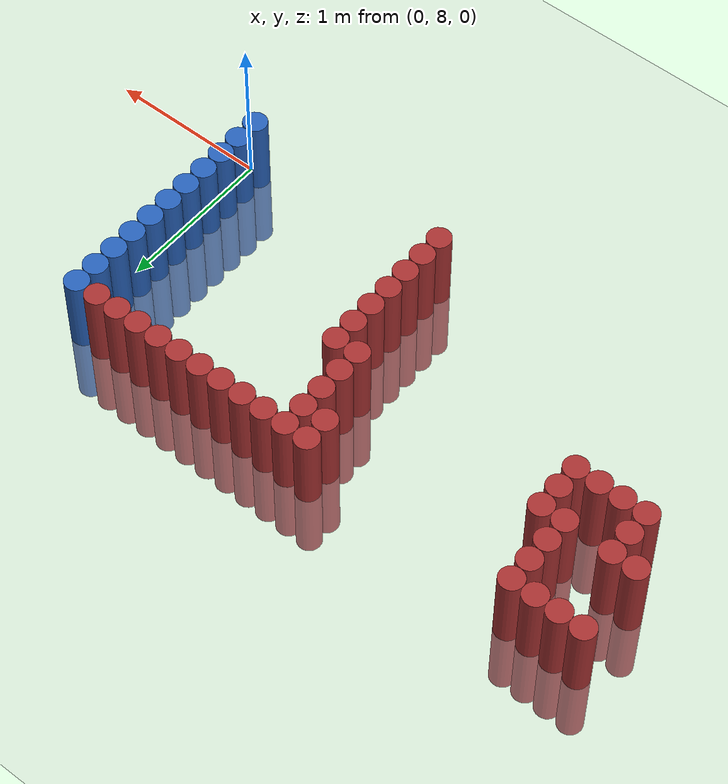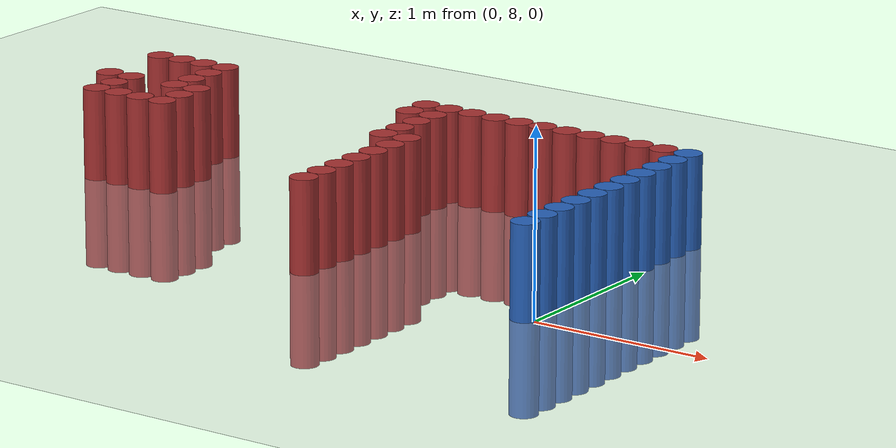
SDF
<sdf version="1.6">
 <world name="default">
  <model name="ground_plane">
   <static>1</static>
   <link name="link">
    <collision name="collision">
     <geometry><plane><normal>0 0 1</normal><size>100 100</size></plane></geometry>
     <surface><friction><ode><mu>100</mu><mu2>50</mu2></ode></friction></surface>
    </collision>
    <visual name="visual">
     <cast_shadows>0</cast_shadows>
     <geometry><plane><normal>0 0 1</normal><size>100 100</size></plane></geometry>
     <material>
      <script><uri>file://media/materials/scripts/gazebo.material</uri><name>Gazebo/Grey</name></script>
     </material>
    </visual>
   </link>
  </model>
  <model name="unit_cylinder_169">
   <static>1</static>
   <pose>-3.525000 9.075000 0.000000 0.000000 0.000000 0.000000</pose>
   <link name="link">
    <inertial>
     <mass>1</mass>
     <inertia><ixx>0.145833</ixx><ixy>0</ixy><ixz>0</ixz><iyy>0.145833</iyy><iyz>0</iyz><izz>0.125</izz></inertia>
    </inertial>
    <collision name="collision">
     <geometry><cylinder><radius>0.075000</radius><length>1</length></cylinder></geometry>
    </collision>
    <visual name="visual">
     <geometry><cylinder><radius>0.075000</radius><length>1</length></cylinder></geometry>
     <material>
      <ambient>0.648000 0.192000 0.192000 1</ambient>
      <diffuse>0.648000 0.192000 0.192000 1</diffuse>
     </material>
     <material>
      <script><name>Gazebo/Grey</name><uri>file://media/materials/scripts/gazebo.material</uri></script>
     </material>
    </visual>
   </link>
  </model>
  <model name="unit_cylinder_170">
   <static>1</static>
   <pose>-3.525000 9.525000 0.000000 0.000000 0.000000 0.000000</pose>
   <link name="link">
    <inertial>
     <mass>1</mass>
     <inertia><ixx>0.145833</ixx><ixy>0</ixy><ixz>0</ixz><iyy>0.145833</iyy><iyz>0</iyz><izz>0.125</izz></inertia>
    </inertial>
    <collision name="collision">
     <geometry><cylinder><radius>0.075000</radius><length>1</length></cylinder></geometry>
    </collision>
    <visual name="visual">
     <geometry><cylinder><radius>0.075000</radius><length>1</length></cylinder></geometry>
     <material>
      <ambient>0.648000 0.192000 0.192000 1</ambient>
      <diffuse>0.648000 0.192000 0.192000 1</diffuse>
     </material>
     <material>
      <script><name>Gazebo/Grey</name><uri>file://media/materials/scripts/gazebo.material</uri></script>
     </material>
    </visual>
   </link>
  </model>
  <model name="unit_cylinder_173">
   <static>1</static>
   <pose>-3.375000 8.775000 0.000000 0.000000 0.000000 0.000000</pose>
   <link name="link">
    <inertial>
     <mass>1</mass>
     <inertia><ixx>0.145833</ixx><ixy>0</ixy><ixz>0</ixz><iyy>0.145833</iyy><iyz>0</iyz><izz>0.125</izz></inertia>
    </inertial>
    <collision name="collision">
     <geometry><cylinder><radius>0.075000</radius><length>1</length></cylinder></geometry>
    </collision>
    <visual name="visual">
     <geometry><cylinder><radius>0.075000</radius><length>1</length></cylinder></geometry>
     <material>
      <ambient>0.648000 0.192000 0.192000 1</ambient>
      <diffuse>0.648000 0.192000 0.192000 1</diffuse>
     </material>
     <material>
      <script><name>Gazebo/Grey</name><uri>file://media/materials/scripts/gazebo.material</uri></script>
     </material>
    </visual>
   </link>
  </model>
  <model name="unit_cylinder_174">
   <static>1</static>
   <pose>-3.375000 8.925000 0.000000 0.000000 0.000000 0.000000</pose>
   <link name="link">
    <inertial>
     <mass>1</mass>
     <inertia><ixx>0.145833</ixx><ixy>0</ixy><ixz>0</ixz><iyy>0.145833</iyy><iyz>0</iyz><izz>0.125</izz></inertia>
    </inertial>
    <collision name="collision">
     <geometry><cylinder><radius>0.075000</radius><length>1</length></cylinder></geometry>
    </collision>
    <visual name="visual">
     <geometry><cylinder><radius>0.075000</radius><length>1</length></cylinder></geometry>
     <material>
      <ambient>0.648000 0.192000 0.192000 1</ambient>
      <diffuse>0.648000 0.192000 0.192000 1</diffuse>
     </material>
     <material>
      <script><name>Gazebo/Grey</name><uri>file://media/materials/scripts/gazebo.material</uri></script>
     </material>
    </visual>
   </link>
  </model>
  <model name="unit_cylinder_175">
   <static>1</static>
   <pose>-3.375000 9.075000 0.000000 0.000000 0.000000 0.000000</pose>
   <link name="link">
    <inertial>
     <mass>1</mass>
     <inertia><ixx>0.145833</ixx><ixy>0</ixy><ixz>0</ixz><iyy>0.145833</iyy><iyz>0</iyz><izz>0.125</izz></inertia>
    </inertial>
    <collision name="collision">
     <geometry><cylinder><radius>0.075000</radius><length>1</length></cylinder></geometry>
    </collision>
    <visual name="visual">
     <geometry><cylinder><radius>0.075000</radius><length>1</length></cylinder></geometry>
     <material>
      <ambient>0.648000 0.192000 0.192000 1</ambient>
      <diffuse>0.648000 0.192000 0.192000 1</diffuse>
     </material>
     <material>
      <script><name>Gazebo/Grey</name><uri>file://media/materials/scripts/gazebo.material</uri></script>
     </material>
    </visual>
   </link>
  </model>
  <model name="unit_cylinder_176">
   <static>1</static>
   <pose>-3.375000 9.525000 0.000000 0.000000 0.000000 0.000000</pose>
   <link name="link">
    <inertial>
     <mass>1</mass>
     <inertia><ixx>0.145833</ixx><ixy>0</ixy><ixz>0</ixz><iyy>0.145833</iyy><iyz>0</iyz><izz>0.125</izz></inertia>
    </inertial>
    <collision name="collision">
     <geometry><cylinder><radius>0.075000</radius><length>1</length></cylinder></geometry>
    </collision>
    <visual name="visual">
     <geometry><cylinder><radius>0.075000</radius><length>1</length></cylinder></geometry>
     <material>
      <ambient>0.648000 0.192000 0.192000 1</ambient>
      <diffuse>0.648000 0.192000 0.192000 1</diffuse>
     </material>
     <material>
      <script><name>Gazebo/Grey</name><uri>file://media/materials/scripts/gazebo.material</uri></script>
     </material>
    </visual>
   </link>
  </model>
  <model name="unit_cylinder_185">
   <static>1</static>
   <pose>-3.225000 8.775000 0.000000 0.000000 0.000000 0.000000</pose>
   <link name="link">
    <inertial>
     <mass>1</mass>
     <inertia><ixx>0.145833</ixx><ixy>0</ixy><ixz>0</ixz><iyy>0.145833</iyy><iyz>0</iyz><izz>0.125</izz></inertia>
    </inertial>
    <collision name="collision">
     <geometry><cylinder><radius>0.075000</radius><length>1</length></cylinder></geometry>
    </collision>
    <visual name="visual">
     <geometry><cylinder><radius>0.075000</radius><length>1</length></cylinder></geometry>
     <material>
      <ambient>0.648000 0.192000 0.192000 1</ambient>
      <diffuse>0.648000 0.192000 0.192000 1</diffuse>
     </material>
     <material>
      <script><name>Gazebo/Grey</name><uri>file://media/materials/scripts/gazebo.material</uri></script>
     </material>
    </visual>
   </link>
  </model>
  <model name="unit_cylinder_186">
   <static>1</static>
   <pose>-3.225000 9.525000 0.000000 0.000000 0.000000 0.000000</pose>
   <link name="link">
    <inertial>
     <mass>1</mass>
     <inertia><ixx>0.145833</ixx><ixy>0</ixy><ixz>0</ixz><iyy>0.145833</iyy><iyz>0</iyz><izz>0.125</izz></inertia>
    </inertial>
    <collision name="collision">
     <geometry><cylinder><radius>0.075000</radius><length>1</length></cylinder></geometry>
    </collision>
    <visual name="visual">
     <geometry><cylinder><radius>0.075000</radius><length>1</length></cylinder></geometry>
     <material>
      <ambient>0.648000 0.192000 0.192000 1</ambient>
      <diffuse>0.648000 0.192000 0.192000 1</diffuse>
     </material>
     <material>
      <script><name>Gazebo/Grey</name><uri>file://media/materials/scripts/gazebo.material</uri></script>
     </material>
    </visual>
   </link>
  </model>
  <model name="unit_cylinder_196">
   <static>1</static>
   <pose>-3.075000 8.775000 0.000000 0.000000 0.000000 0.000000</pose>
   <link name="link">
    <inertial>
     <mass>1</mass>
     <inertia><ixx>0.145833</ixx><ixy>0</ixy><ixz>0</ixz><iyy>0.145833</iyy><iyz>0</iyz><izz>0.125</izz></inertia>
    </inertial>
    <collision name="collision">
     <geometry><cylinder><radius>0.075000</radius><length>1</length></cylinder></geometry>
    </collision>
    <visual name="visual">
     <geometry><cylinder><radius>0.075000</radius><length>1</length></cylinder></geometry>
     <material>
      <ambient>0.648000 0.192000 0.192000 1</ambient>
      <diffuse>0.648000 0.192000 0.192000 1</diffuse>
     </material>
     <material>
      <script><name>Gazebo/Grey</name><uri>file://media/materials/scripts/gazebo.material</uri></script>
     </material>
    </visual>
   </link>
  </model>
  <model name="unit_cylinder_197">
   <static>1</static>
   <pose>-3.075000 9.075000 0.000000 0.000000 0.000000 0.000000</pose>
   <link name="link">
    <inertial>
     <mass>1</mass>
     <inertia><ixx>0.145833</ixx><ixy>0</ixy><ixz>0</ixz><iyy>0.145833</iyy><iyz>0</iyz><izz>0.125</izz></inertia>
    </inertial>
    <collision name="collision">
     <geometry><cylinder><radius>0.075000</radius><length>1</length></cylinder></geometry>
    </collision>
    <visual name="visual">
     <geometry><cylinder><radius>0.075000</radius><length>1</length></cylinder></geometry>
     <material>
      <ambient>0.648000 0.192000 0.192000 1</ambient>
      <diffuse>0.648000 0.192000 0.192000 1</diffuse>
     </material>
     <material>
      <script><name>Gazebo/Grey</name><uri>file://media/materials/scripts/gazebo.material</uri></script>
     </material>
    </visual>
   </link>
  </model>
  <model name="unit_cylinder_198">
   <static>1</static>
   <pose>-3.075000 9.225000 0.000000 0.000000 0.000000 0.000000</pose>
   <link name="link">
    <inertial>
     <mass>1</mass>
     <inertia><ixx>0.145833</ixx><ixy>0</ixy><ixz>0</ixz><iyy>0.145833</iyy><iyz>0</iyz><izz>0.125</izz></inertia>
    </inertial>
    <collision name="collision">
     <geometry><cylinder><radius>0.075000</radius><length>1</length></cylinder></geometry>
    </collision>
    <visual name="visual">
     <geometry><cylinder><radius>0.075000</radius><length>1</length></cylinder></geometry>
     <material>
      <ambient>0.648000 0.192000 0.192000 1</ambient>
      <diffuse>0.648000 0.192000 0.192000 1</diffuse>
     </material>
     <material>
      <script><name>Gazebo/Grey</name><uri>file://media/materials/scripts/gazebo.material</uri></script>
     </material>
    </visual>
   </link>
  </model>
  <model name="unit_cylinder_199">
   <static>1</static>
   <pose>-3.075000 9.375000 0.000000 0.000000 0.000000 0.000000</pose>
   <link name="link">
    <inertial>
     <mass>1</mass>
     <inertia><ixx>0.145833</ixx><ixy>0</ixy><ixz>0</ixz><iyy>0.145833</iyy><iyz>0</iyz><izz>0.125</izz></inertia>
    </inertial>
    <collision name="collision">
     <geometry><cylinder><radius>0.075000</radius><length>1</length></cylinder></geometry>
    </collision>
    <visual name="visual">
     <geometry><cylinder><radius>0.075000</radius><length>1</length></cylinder></geometry>
     <material>
      <ambient>0.648000 0.192000 0.192000 1</ambient>
      <diffuse>0.648000 0.192000 0.192000 1</diffuse>
     </material>
     <material>
      <script><name>Gazebo/Grey</name><uri>file://media/materials/scripts/gazebo.material</uri></script>
     </material>
    </visual>
   </link>
  </model>
  <model name="unit_cylinder_200">
   <static>1</static>
   <pose>-3.075000 9.525000 0.000000 0.000000 0.000000 0.000000</pose>
   <link name="link">
    <inertial>
     <mass>1</mass>
     <inertia><ixx>0.145833</ixx><ixy>0</ixy><ixz>0</ixz><iyy>0.145833</iyy><iyz>0</iyz><izz>0.125</izz></inertia>
    </inertial>
    <collision name="collision">
     <geometry><cylinder><radius>0.075000</radius><length>1</length></cylinder></geometry>
    </collision>
    <visual name="visual">
     <geometry><cylinder><radius>0.075000</radius><length>1</length></cylinder></geometry>
     <material>
      <ambient>0.648000 0.192000 0.192000 1</ambient>
      <diffuse>0.648000 0.192000 0.192000 1</diffuse>
     </material>
     <material>
      <script><name>Gazebo/Grey</name><uri>file://media/materials/scripts/gazebo.material</uri></script>
     </material>
    </visual>
   </link>
  </model>
  <model name="unit_cylinder_201">
   <static>1</static>
   <pose>-2.925000 8.775000 0.000000 0.000000 0.000000 0.000000</pose>
   <link name="link">
    <inertial>
     <mass>1</mass>
     <inertia><ixx>0.145833</ixx><ixy>0</ixy><ixz>0</ixz><iyy>0.145833</iyy><iyz>0</iyz><izz>0.125</izz></inertia>
    </inertial>
    <collision name="collision">
     <geometry><cylinder><radius>0.075000</radius><length>1</length></cylinder></geometry>
    </collision>
    <visual name="visual">
     <geometry><cylinder><radius>0.075000</radius><length>1</length></cylinder></geometry>
     <material>
      <ambient>0.648000 0.192000 0.192000 1</ambient>
      <diffuse>0.648000 0.192000 0.192000 1</diffuse>
     </material>
     <material>
      <script><name>Gazebo/Grey</name><uri>file://media/materials/scripts/gazebo.material</uri></script>
     </material>
    </visual>
   </link>
  </model>
  <model name="unit_cylinder_202">
   <static>1</static>
   <pose>-2.925000 8.925000 0.000000 0.000000 0.000000 0.000000</pose>
   <link name="link">
    <inertial>
     <mass>1</mass>
     <inertia><ixx>0.145833</ixx><ixy>0</ixy><ixz>0</ixz><iyy>0.145833</iyy><iyz>0</iyz><izz>0.125</izz></inertia>
    </inertial>
    <collision name="collision">
     <geometry><cylinder><radius>0.075000</radius><length>1</length></cylinder></geometry>
    </collision>
    <visual name="visual">
     <geometry><cylinder><radius>0.075000</radius><length>1</length></cylinder></geometry>
     <material>
      <ambient>0.648000 0.192000 0.192000 1</ambient>
      <diffuse>0.648000 0.192000 0.192000 1</diffuse>
     </material>
     <material>
      <script><name>Gazebo/Grey</name><uri>file://media/materials/scripts/gazebo.material</uri></script>
     </material>
    </visual>
   </link>
  </model>
  <model name="unit_cylinder_203">
   <static>1</static>
   <pose>-2.925000 9.075000 0.000000 0.000000 0.000000 0.000000</pose>
   <link name="link">
    <inertial>
     <mass>1</mass>
     <inertia><ixx>0.145833</ixx><ixy>0</ixy><ixz>0</ixz><iyy>0.145833</iyy><iyz>0</iyz><izz>0.125</izz></inertia>
    </inertial>
    <collision name="collision">
     <geometry><cylinder><radius>0.075000</radius><length>1</length></cylinder></geometry>
    </collision>
    <visual name="visual">
     <geometry><cylinder><radius>0.075000</radius><length>1</length></cylinder></geometry>
     <material>
      <ambient>0.648000 0.192000 0.192000 1</ambient>
      <diffuse>0.648000 0.192000 0.192000 1</diffuse>
     </material>
     <material>
      <script><name>Gazebo/Grey</name><uri>file://media/materials/scripts/gazebo.material</uri></script>
     </material>
    </visual>
   </link>
  </model>
  <model name="unit_cylinder_227">
   <static>1</static>
   <pose>-1.725000 9.375000 0.000000 0.000000 0.000000 0.000000</pose>
   <link name="link">
    <inertial>
     <mass>1</mass>
     <inertia><ixx>0.145833</ixx><ixy>0</ixy><ixz>0</ixz><iyy>0.145833</iyy><iyz>0</iyz><izz>0.125</izz></inertia>
    </inertial>
    <collision name="collision">
     <geometry><cylinder><radius>0.075000</radius><length>1</length></cylinder></geometry>
    </collision>
    <visual name="visual">
     <geometry><cylinder><radius>0.075000</radius><length>1</length></cylinder></geometry>
     <material>
      <ambient>0.648000 0.192000 0.192000 1</ambient>
      <diffuse>0.648000 0.192000 0.192000 1</diffuse>
     </material>
     <material>
      <script><name>Gazebo/Grey</name><uri>file://media/materials/scripts/gazebo.material</uri></script>
     </material>
    </visual>
   </link>
  </model>
  <model name="unit_cylinder_228">
   <static>1</static>
   <pose>-1.725000 9.525000 0.000000 0.000000 0.000000 0.000000</pose>
   <link name="link">
    <inertial>
     <mass>1</mass>
     <inertia><ixx>0.145833</ixx><ixy>0</ixy><ixz>0</ixz><iyy>0.145833</iyy><iyz>0</iyz><izz>0.125</izz></inertia>
    </inertial>
    <collision name="collision">
     <geometry><cylinder><radius>0.075000</radius><length>1</length></cylinder></geometry>
    </collision>
    <visual name="visual">
     <geometry><cylinder><radius>0.075000</radius><length>1</length></cylinder></geometry>
     <material>
      <ambient>0.648000 0.192000 0.192000 1</ambient>
      <diffuse>0.648000 0.192000 0.192000 1</diffuse>
     </material>
     <material>
      <script><name>Gazebo/Grey</name><uri>file://media/materials/scripts/gazebo.material</uri></script>
     </material>
    </visual>
   </link>
  </model>
  <model name="unit_cylinder_232">
   <static>1</static>
   <pose>-1.575000 8.925000 0.000000 0.000000 0.000000 0.000000</pose>
   <link name="link">
    <inertial>
     <mass>1</mass>
     <inertia><ixx>0.145833</ixx><ixy>0</ixy><ixz>0</ixz><iyy>0.145833</iyy><iyz>0</iyz><izz>0.125</izz></inertia>
    </inertial>
    <collision name="collision">
     <geometry><cylinder><radius>0.075000</radius><length>1</length></cylinder></geometry>
    </collision>
    <visual name="visual">
     <geometry><cylinder><radius>0.075000</radius><length>1</length></cylinder></geometry>
     <material>
      <ambient>0.648000 0.192000 0.192000 1</ambient>
      <diffuse>0.648000 0.192000 0.192000 1</diffuse>
     </material>
     <material>
      <script><name>Gazebo/Grey</name><uri>file://media/materials/scripts/gazebo.material</uri></script>
     </material>
    </visual>
   </link>
  </model>
  <model name="unit_cylinder_233">
   <static>1</static>
   <pose>-1.575000 9.075000 0.000000 0.000000 0.000000 0.000000</pose>
   <link name="link">
    <inertial>
     <mass>1</mass>
     <inertia><ixx>0.145833</ixx><ixy>0</ixy><ixz>0</ixz><iyy>0.145833</iyy><iyz>0</iyz><izz>0.125</izz></inertia>
    </inertial>
    <collision name="collision">
     <geometry><cylinder><radius>0.075000</radius><length>1</length></cylinder></geometry>
    </collision>
    <visual name="visual">
     <geometry><cylinder><radius>0.075000</radius><length>1</length></cylinder></geometry>
     <material>
      <ambient>0.648000 0.192000 0.192000 1</ambient>
      <diffuse>0.648000 0.192000 0.192000 1</diffuse>
     </material>
     <material>
      <script><name>Gazebo/Grey</name><uri>file://media/materials/scripts/gazebo.material</uri></script>
     </material>
    </visual>
   </link>
  </model>
  <model name="unit_cylinder_234">
   <static>1</static>
   <pose>-1.575000 9.225000 0.000000 0.000000 0.000000 0.000000</pose>
   <link name="link">
    <inertial>
     <mass>1</mass>
     <inertia><ixx>0.145833</ixx><ixy>0</ixy><ixz>0</ixz><iyy>0.145833</iyy><iyz>0</iyz><izz>0.125</izz></inertia>
    </inertial>
    <collision name="collision">
     <geometry><cylinder><radius>0.075000</radius><length>1</length></cylinder></geometry>
    </collision>
    <visual name="visual">
     <geometry><cylinder><radius>0.075000</radius><length>1</length></cylinder></geometry>
     <material>
      <ambient>0.648000 0.192000 0.192000 1</ambient>
      <diffuse>0.648000 0.192000 0.192000 1</diffuse>
     </material>
     <material>
      <script><name>Gazebo/Grey</name><uri>file://media/materials/scripts/gazebo.material</uri></script>
     </material>
    </visual>
   </link>
  </model>
  <model name="unit_cylinder_235">
   <static>1</static>
   <pose>-1.575000 9.375000 0.000000 0.000000 0.000000 0.000000</pose>
   <link name="link">
    <inertial>
     <mass>1</mass>
     <inertia><ixx>0.145833</ixx><ixy>0</ixy><ixz>0</ixz><iyy>0.145833</iyy><iyz>0</iyz><izz>0.125</izz></inertia>
    </inertial>
    <collision name="collision">
     <geometry><cylinder><radius>0.075000</radius><length>1</length></cylinder></geometry>
    </collision>
    <visual name="visual">
     <geometry><cylinder><radius>0.075000</radius><length>1</length></cylinder></geometry>
     <material>
      <ambient>0.648000 0.192000 0.192000 1</ambient>
      <diffuse>0.648000 0.192000 0.192000 1</diffuse>
     </material>
     <material>
      <script><name>Gazebo/Grey</name><uri>file://media/materials/scripts/gazebo.material</uri></script>
     </material>
    </visual>
   </link>
  </model>
  <model name="unit_cylinder_236">
   <static>1</static>
   <pose>-1.575000 9.525000 0.000000 0.000000 0.000000 0.000000</pose>
   <link name="link">
    <inertial>
     <mass>1</mass>
     <inertia><ixx>0.145833</ixx><ixy>0</ixy><ixz>0</ixz><iyy>0.145833</iyy><iyz>0</iyz><izz>0.125</izz></inertia>
    </inertial>
    <collision name="collision">
     <geometry><cylinder><radius>0.075000</radius><length>1</length></cylinder></geometry>
    </collision>
    <visual name="visual">
     <geometry><cylinder><radius>0.075000</radius><length>1</length></cylinder></geometry>
     <material>
      <ambient>0.648000 0.192000 0.192000 1</ambient>
      <diffuse>0.648000 0.192000 0.192000 1</diffuse>
     </material>
     <material>
      <script><name>Gazebo/Grey</name><uri>file://media/materials/scripts/gazebo.material</uri></script>
     </material>
    </visual>
   </link>
  </model>
  <model name="unit_cylinder_241">
   <static>1</static>
   <pose>-1.425000 8.025000 0.000000 0.000000 0.000000 0.000000</pose>
   <link name="link">
    <inertial>
     <mass>1</mass>
     <inertia><ixx>0.145833</ixx><ixy>0</ixy><ixz>0</ixz><iyy>0.145833</iyy><iyz>0</iyz><izz>0.125</izz></inertia>
    </inertial>
    <collision name="collision">
     <geometry><cylinder><radius>0.075000</radius><length>1</length></cylinder></geometry>
    </collision>
    <visual name="visual">
     <geometry><cylinder><radius>0.075000</radius><length>1</length></cylinder></geometry>
     <material>
      <ambient>0.648000 0.192000 0.192000 1</ambient>
      <diffuse>0.648000 0.192000 0.192000 1</diffuse>
     </material>
     <material>
      <script><name>Gazebo/Grey</name><uri>file://media/materials/scripts/gazebo.material</uri></script>
     </material>
    </visual>
   </link>
  </model>
  <model name="unit_cylinder_242">
   <static>1</static>
   <pose>-1.425000 8.175000 0.000000 0.000000 0.000000 0.000000</pose>
   <link name="link">
    <inertial>
     <mass>1</mass>
     <inertia><ixx>0.145833</ixx><ixy>0</ixy><ixz>0</ixz><iyy>0.145833</iyy><iyz>0</iyz><izz>0.125</izz></inertia>
    </inertial>
    <collision name="collision">
     <geometry><cylinder><radius>0.075000</radius><length>1</length></cylinder></geometry>
    </collision>
    <visual name="visual">
     <geometry><cylinder><radius>0.075000</radius><length>1</length></cylinder></geometry>
     <material>
      <ambient>0.648000 0.192000 0.192000 1</ambient>
      <diffuse>0.648000 0.192000 0.192000 1</diffuse>
     </material>
     <material>
      <script><name>Gazebo/Grey</name><uri>file://media/materials/scripts/gazebo.material</uri></script>
     </material>
    </visual>
   </link>
  </model>
  <model name="unit_cylinder_243">
   <static>1</static>
   <pose>-1.425000 8.325000 0.000000 0.000000 0.000000 0.000000</pose>
   <link name="link">
    <inertial>
     <mass>1</mass>
     <inertia><ixx>0.145833</ixx><ixy>0</ixy><ixz>0</ixz><iyy>0.145833</iyy><iyz>0</iyz><izz>0.125</izz></inertia>
    </inertial>
    <collision name="collision">
     <geometry><cylinder><radius>0.075000</radius><length>1</length></cylinder></geometry>
    </collision>
    <visual name="visual">
     <geometry><cylinder><radius>0.075000</radius><length>1</length></cylinder></geometry>
     <material>
      <ambient>0.648000 0.192000 0.192000 1</ambient>
      <diffuse>0.648000 0.192000 0.192000 1</diffuse>
     </material>
     <material>
      <script><name>Gazebo/Grey</name><uri>file://media/materials/scripts/gazebo.material</uri></script>
     </material>
    </visual>
   </link>
  </model>
  <model name="unit_cylinder_244">
   <static>1</static>
   <pose>-1.425000 8.475000 0.000000 0.000000 0.000000 0.000000</pose>
   <link name="link">
    <inertial>
     <mass>1</mass>
     <inertia><ixx>0.145833</ixx><ixy>0</ixy><ixz>0</ixz><iyy>0.145833</iyy><iyz>0</iyz><izz>0.125</izz></inertia>
    </inertial>
    <collision name="collision">
     <geometry><cylinder><radius>0.075000</radius><length>1</length></cylinder></geometry>
    </collision>
    <visual name="visual">
     <geometry><cylinder><radius>0.075000</radius><length>1</length></cylinder></geometry>
     <material>
      <ambient>0.648000 0.192000 0.192000 1</ambient>
      <diffuse>0.648000 0.192000 0.192000 1</diffuse>
     </material>
     <material>
      <script><name>Gazebo/Grey</name><uri>file://media/materials/scripts/gazebo.material</uri></script>
     </material>
    </visual>
   </link>
  </model>
  <model name="unit_cylinder_245">
   <static>1</static>
   <pose>-1.425000 8.625000 0.000000 0.000000 0.000000 0.000000</pose>
   <link name="link">
    <inertial>
     <mass>1</mass>
     <inertia><ixx>0.145833</ixx><ixy>0</ixy><ixz>0</ixz><iyy>0.145833</iyy><iyz>0</iyz><izz>0.125</izz></inertia>
    </inertial>
    <collision name="collision">
     <geometry><cylinder><radius>0.075000</radius><length>1</length></cylinder></geometry>
    </collision>
    <visual name="visual">
     <geometry><cylinder><radius>0.075000</radius><length>1</length></cylinder></geometry>
     <material>
      <ambient>0.648000 0.192000 0.192000 1</ambient>
      <diffuse>0.648000 0.192000 0.192000 1</diffuse>
     </material>
     <material>
      <script><name>Gazebo/Grey</name><uri>file://media/materials/scripts/gazebo.material</uri></script>
     </material>
    </visual>
   </link>
  </model>
  <model name="unit_cylinder_246">
   <static>1</static>
   <pose>-1.425000 8.775000 0.000000 0.000000 0.000000 0.000000</pose>
   <link name="link">
    <inertial>
     <mass>1</mass>
     <inertia><ixx>0.145833</ixx><ixy>0</ixy><ixz>0</ixz><iyy>0.145833</iyy><iyz>0</iyz><izz>0.125</izz></inertia>
    </inertial>
    <collision name="collision">
     <geometry><cylinder><radius>0.075000</radius><length>1</length></cylinder></geometry>
    </collision>
    <visual name="visual">
     <geometry><cylinder><radius>0.075000</radius><length>1</length></cylinder></geometry>
     <material>
      <ambient>0.648000 0.192000 0.192000 1</ambient>
      <diffuse>0.648000 0.192000 0.192000 1</diffuse>
     </material>
     <material>
      <script><name>Gazebo/Grey</name><uri>file://media/materials/scripts/gazebo.material</uri></script>
     </material>
    </visual>
   </link>
  </model>
  <model name="unit_cylinder_247">
   <static>1</static>
   <pose>-1.425000 8.925000 0.000000 0.000000 0.000000 0.000000</pose>
   <link name="link">
    <inertial>
     <mass>1</mass>
     <inertia><ixx>0.145833</ixx><ixy>0</ixy><ixz>0</ixz><iyy>0.145833</iyy><iyz>0</iyz><izz>0.125</izz></inertia>
    </inertial>
    <collision name="collision">
     <geometry><cylinder><radius>0.075000</radius><length>1</length></cylinder></geometry>
    </collision>
    <visual name="visual">
     <geometry><cylinder><radius>0.075000</radius><length>1</length></cylinder></geometry>
     <material>
      <ambient>0.648000 0.192000 0.192000 1</ambient>
      <diffuse>0.648000 0.192000 0.192000 1</diffuse>
     </material>
     <material>
      <script><name>Gazebo/Grey</name><uri>file://media/materials/scripts/gazebo.material</uri></script>
     </material>
    </visual>
   </link>
  </model>
  <model name="unit_cylinder_248">
   <static>1</static>
   <pose>-1.425000 9.525000 0.000000 0.000000 0.000000 0.000000</pose>
   <link name="link">
    <inertial>
     <mass>1</mass>
     <inertia><ixx>0.145833</ixx><ixy>0</ixy><ixz>0</ixz><iyy>0.145833</iyy><iyz>0</iyz><izz>0.125</izz></inertia>
    </inertial>
    <collision name="collision">
     <geometry><cylinder><radius>0.075000</radius><length>1</length></cylinder></geometry>
    </collision>
    <visual name="visual">
     <geometry><cylinder><radius>0.075000</radius><length>1</length></cylinder></geometry>
     <material>
      <ambient>0.648000 0.192000 0.192000 1</ambient>
      <diffuse>0.648000 0.192000 0.192000 1</diffuse>
     </material>
     <material>
      <script><name>Gazebo/Grey</name><uri>file://media/materials/scripts/gazebo.material</uri></script>
     </material>
    </visual>
   </link>
  </model>
  <model name="unit_cylinder_255">
   <static>1</static>
   <pose>-1.275000 9.525000 0.000000 0.000000 0.000000 0.000000</pose>
   <link name="link">
    <inertial>
     <mass>1</mass>
     <inertia><ixx>0.145833</ixx><ixy>0</ixy><ixz>0</ixz><iyy>0.145833</iyy><iyz>0</iyz><izz>0.125</izz></inertia>
    </inertial>
    <collision name="collision">
     <geometry><cylinder><radius>0.075000</radius><length>1</length></cylinder></geometry>
    </collision>
    <visual name="visual">
     <geometry><cylinder><radius>0.075000</radius><length>1</length></cylinder></geometry>
     <material>
      <ambient>0.648000 0.192000 0.192000 1</ambient>
      <diffuse>0.648000 0.192000 0.192000 1</diffuse>
     </material>
     <material>
      <script><name>Gazebo/Grey</name><uri>file://media/materials/scripts/gazebo.material</uri></script>
     </material>
    </visual>
   </link>
  </model>
  <model name="unit_cylinder_257">
   <static>1</static>
   <pose>-1.125000 9.525000 0.000000 0.000000 0.000000 0.000000</pose>
   <link name="link">
    <inertial>
     <mass>1</mass>
     <inertia><ixx>0.145833</ixx><ixy>0</ixy><ixz>0</ixz><iyy>0.145833</iyy><iyz>0</iyz><izz>0.125</izz></inertia>
    </inertial>
    <collision name="collision">
     <geometry><cylinder><radius>0.075000</radius><length>1</length></cylinder></geometry>
    </collision>
    <visual name="visual">
     <geometry><cylinder><radius>0.075000</radius><length>1</length></cylinder></geometry>
     <material>
      <ambient>0.648000 0.192000 0.192000 1</ambient>
      <diffuse>0.648000 0.192000 0.192000 1</diffuse>
     </material>
     <material>
      <script><name>Gazebo/Grey</name><uri>file://media/materials/scripts/gazebo.material</uri></script>
     </material>
    </visual>
   </link>
  </model>
  <model name="unit_cylinder_259">
   <static>1</static>
   <pose>-0.975000 9.525000 0.000000 0.000000 0.000000 0.000000</pose>
   <link name="link">
    <inertial>
     <mass>1</mass>
     <inertia><ixx>0.145833</ixx><ixy>0</ixy><ixz>0</ixz><iyy>0.145833</iyy><iyz>0</iyz><izz>0.125</izz></inertia>
    </inertial>
    <collision name="collision">
     <geometry><cylinder><radius>0.075000</radius><length>1</length></cylinder></geometry>
    </collision>
    <visual name="visual">
     <geometry><cylinder><radius>0.075000</radius><length>1</length></cylinder></geometry>
     <material>
      <ambient>0.648000 0.192000 0.192000 1</ambient>
      <diffuse>0.648000 0.192000 0.192000 1</diffuse>
     </material>
     <material>
      <script><name>Gazebo/Grey</name><uri>file://media/materials/scripts/gazebo.material</uri></script>
     </material>
    </visual>
   </link>
  </model>
  <model name="unit_cylinder_261">
   <static>1</static>
   <pose>-0.825000 9.525000 0.000000 0.000000 0.000000 0.000000</pose>
   <link name="link">
    <inertial>
     <mass>1</mass>
     <inertia><ixx>0.145833</ixx><ixy>0</ixy><ixz>0</ixz><iyy>0.145833</iyy><iyz>0</iyz><izz>0.125</izz></inertia>
    </inertial>
    <collision name="collision">
     <geometry><cylinder><radius>0.075000</radius><length>1</length></cylinder></geometry>
    </collision>
    <visual name="visual">
     <geometry><cylinder><radius>0.075000</radius><length>1</length></cylinder></geometry>
     <material>
      <ambient>0.648000 0.192000 0.192000 1</ambient>
      <diffuse>0.648000 0.192000 0.192000 1</diffuse>
     </material>
     <material>
      <script><name>Gazebo/Grey</name><uri>file://media/materials/scripts/gazebo.material</uri></script>
     </material>
    </visual>
   </link>
  </model>
  <model name="unit_cylinder_263">
   <static>1</static>
   <pose>-0.675000 9.525000 0.000000 0.000000 0.000000 0.000000</pose>
   <link name="link">
    <inertial>
     <mass>1</mass>
     <inertia><ixx>0.145833</ixx><ixy>0</ixy><ixz>0</ixz><iyy>0.145833</iyy><iyz>0</iyz><izz>0.125</izz></inertia>
    </inertial>
    <collision name="collision">
     <geometry><cylinder><radius>0.075000</radius><length>1</length></cylinder></geometry>
    </collision>
    <visual name="visual">
     <geometry><cylinder><radius>0.075000</radius><length>1</length></cylinder></geometry>
     <material>
      <ambient>0.648000 0.192000 0.192000 1</ambient>
      <diffuse>0.648000 0.192000 0.192000 1</diffuse>
     </material>
     <material>
      <script><name>Gazebo/Grey</name><uri>file://media/materials/scripts/gazebo.material</uri></script>
     </material>
    </visual>
   </link>
  </model>
  <model name="unit_cylinder_265">
   <static>1</static>
   <pose>-0.525000 9.525000 0.000000 0.000000 0.000000 0.000000</pose>
   <link name="link">
    <inertial>
     <mass>1</mass>
     <inertia><ixx>0.145833</ixx><ixy>0</ixy><ixz>0</ixz><iyy>0.145833</iyy><iyz>0</iyz><izz>0.125</izz></inertia>
    </inertial>
    <collision name="collision">
     <geometry><cylinder><radius>0.075000</radius><length>1</length></cylinder></geometry>
    </collision>
    <visual name="visual">
     <geometry><cylinder><radius>0.075000</radius><length>1</length></cylinder></geometry>
     <material>
      <ambient>0.648000 0.192000 0.192000 1</ambient>
      <diffuse>0.648000 0.192000 0.192000 1</diffuse>
     </material>
     <material>
      <script><name>Gazebo/Grey</name><uri>file://media/materials/scripts/gazebo.material</uri></script>
     </material>
    </visual>
   </link>
  </model>
  <model name="unit_cylinder_267">
   <static>1</static>
   <pose>-0.375000 9.525000 0.000000 0.000000 0.000000 0.000000</pose>
   <link name="link">
    <inertial>
     <mass>1</mass>
     <inertia><ixx>0.145833</ixx><ixy>0</ixy><ixz>0</ixz><iyy>0.145833</iyy><iyz>0</iyz><izz>0.125</izz></inertia>
    </inertial>
    <collision name="collision">
     <geometry><cylinder><radius>0.075000</radius><length>1</length></cylinder></geometry>
    </collision>
    <visual name="visual">
     <geometry><cylinder><radius>0.075000</radius><length>1</length></cylinder></geometry>
     <material>
      <ambient>0.648000 0.192000 0.192000 1</ambient>
      <diffuse>0.648000 0.192000 0.192000 1</diffuse>
     </material>
     <material>
      <script><name>Gazebo/Grey</name><uri>file://media/materials/scripts/gazebo.material</uri></script>
     </material>
    </visual>
   </link>
  </model>
  <model name="unit_cylinder_269">
   <static>1</static>
   <pose>-0.225000 9.525000 0.000000 0.000000 0.000000 0.000000</pose>
   <link name="link">
    <inertial>
     <mass>1</mass>
     <inertia><ixx>0.145833</ixx><ixy>0</ixy><ixz>0</ixz><iyy>0.145833</iyy><iyz>0</iyz><izz>0.125</izz></inertia>
    </inertial>
    <collision name="collision">
     <geometry><cylinder><radius>0.075000</radius><length>1</length></cylinder></geometry>
    </collision>
    <visual name="visual">
     <geometry><cylinder><radius>0.075000</radius><length>1</length></cylinder></geometry>
     <material>
      <ambient>0.648000 0.192000 0.192000 1</ambient>
      <diffuse>0.648000 0.192000 0.192000 1</diffuse>
     </material>
     <material>
      <script><name>Gazebo/Grey</name><uri>file://media/materials/scripts/gazebo.material</uri></script>
     </material>
    </visual>
   </link>
  </model>
  <model name="unit_cylinder_289">
   <static>1</static>
   <pose>-0.075000 8.025000 0.000000 0.000000 0.000000 0.000000</pose>
   <link name="link">
    <inertial>
     <mass>1</mass>
     <inertia><ixx>0.145833</ixx><ixy>0</ixy><ixz>0</ixz><iyy>0.145833</iyy><iyz>0</iyz><izz>0.125</izz></inertia>
    </inertial>
    <collision name="collision">
     <geometry><cylinder><radius>0.075000</radius><length>1</length></cylinder></geometry>
    </collision>
    <visual name="visual">
     <geometry><cylinder><radius>0.075000</radius><length>1</length></cylinder></geometry>
     <material>
      <ambient>0.152000 0.379000 0.720000 1</ambient>
      <diffuse>0.152000 0.379000 0.720000 1</diffuse>
     </material>
     <material>
      <script><name>Gazebo/Grey</name><uri>file://media/materials/scripts/gazebo.material</uri></script>
     </material>
    </visual>
   </link>
  </model>
  <model name="unit_cylinder_290">
   <static>1</static>
   <pose>-0.075000 8.175000 0.000000 0.000000 0.000000 0.000000</pose>
   <link name="link">
    <inertial>
     <mass>1</mass>
     <inertia><ixx>0.145833</ixx><ixy>0</ixy><ixz>0</ixz><iyy>0.145833</iyy><iyz>0</iyz><izz>0.125</izz></inertia>
    </inertial>
    <collision name="collision">
     <geometry><cylinder><radius>0.075000</radius><length>1</length></cylinder></geometry>
    </collision>
    <visual name="visual">
     <geometry><cylinder><radius>0.075000</radius><length>1</length></cylinder></geometry>
     <material>
      <ambient>0.152000 0.379000 0.720000 1</ambient>
      <diffuse>0.152000 0.379000 0.720000 1</diffuse>
     </material>
     <material>
      <script><name>Gazebo/Grey</name><uri>file://media/materials/scripts/gazebo.material</uri></script>
     </material>
    </visual>
   </link>
  </model>
  <model name="unit_cylinder_291">
   <static>1</static>
   <pose>-0.075000 8.325000 0.000000 0.000000 0.000000 0.000000</pose>
   <link name="link">
    <inertial>
     <mass>1</mass>
     <inertia><ixx>0.145833</ixx><ixy>0</ixy><ixz>0</ixz><iyy>0.145833</iyy><iyz>0</iyz><izz>0.125</izz></inertia>
    </inertial>
    <collision name="collision">
     <geometry><cylinder><radius>0.075000</radius><length>1</length></cylinder></geometry>
    </collision>
    <visual name="visual">
     <geometry><cylinder><radius>0.075000</radius><length>1</length></cylinder></geometry>
     <material>
      <ambient>0.152000 0.379000 0.720000 1</ambient>
      <diffuse>0.152000 0.379000 0.720000 1</diffuse>
     </material>
     <material>
      <script><name>Gazebo/Grey</name><uri>file://media/materials/scripts/gazebo.material</uri></script>
     </material>
    </visual>
   </link>
  </model>
  <model name="unit_cylinder_292">
   <static>1</static>
   <pose>-0.075000 8.475000 0.000000 0.000000 0.000000 0.000000</pose>
   <link name="link">
    <inertial>
     <mass>1</mass>
     <inertia><ixx>0.145833</ixx><ixy>0</ixy><ixz>0</ixz><iyy>0.145833</iyy><iyz>0</iyz><izz>0.125</izz></inertia>
    </inertial>
    <collision name="collision">
     <geometry><cylinder><radius>0.075000</radius><length>1</length></cylinder></geometry>
    </collision>
    <visual name="visual">
     <geometry><cylinder><radius>0.075000</radius><length>1</length></cylinder></geometry>
     <material>
      <ambient>0.152000 0.379000 0.720000 1</ambient>
      <diffuse>0.152000 0.379000 0.720000 1</diffuse>
     </material>
     <material>
      <script><name>Gazebo/Grey</name><uri>file://media/materials/scripts/gazebo.material</uri></script>
     </material>
    </visual>
   </link>
  </model>
  <model name="unit_cylinder_293">
   <static>1</static>
   <pose>-0.075000 8.625000 0.000000 0.000000 0.000000 0.000000</pose>
   <link name="link">
    <inertial>
     <mass>1</mass>
     <inertia><ixx>0.145833</ixx><ixy>0</ixy><ixz>0</ixz><iyy>0.145833</iyy><iyz>0</iyz><izz>0.125</izz></inertia>
    </inertial>
    <collision name="collision">
     <geometry><cylinder><radius>0.075000</radius><length>1</length></cylinder></geometry>
    </collision>
    <visual name="visual">
     <geometry><cylinder><radius>0.075000</radius><length>1</length></cylinder></geometry>
     <material>
      <ambient>0.152000 0.379000 0.720000 1</ambient>
      <diffuse>0.152000 0.379000 0.720000 1</diffuse>
     </material>
     <material>
      <script><name>Gazebo/Grey</name><uri>file://media/materials/scripts/gazebo.material</uri></script>
     </material>
    </visual>
   </link>
  </model>
  <model name="unit_cylinder_294">
   <static>1</static>
   <pose>-0.075000 8.775000 0.000000 0.000000 0.000000 0.000000</pose>
   <link name="link">
    <inertial>
     <mass>1</mass>
     <inertia><ixx>0.145833</ixx><ixy>0</ixy><ixz>0</ixz><iyy>0.145833</iyy><iyz>0</iyz><izz>0.125</izz></inertia>
    </inertial>
    <collision name="collision">
     <geometry><cylinder><radius>0.075000</radius><length>1</length></cylinder></geometry>
    </collision>
    <visual name="visual">
     <geometry><cylinder><radius>0.075000</radius><length>1</length></cylinder></geometry>
     <material>
      <ambient>0.152000 0.379000 0.720000 1</ambient>
      <diffuse>0.152000 0.379000 0.720000 1</diffuse>
     </material>
     <material>
      <script><name>Gazebo/Grey</name><uri>file://media/materials/scripts/gazebo.material</uri></script>
     </material>
    </visual>
   </link>
  </model>
  <model name="unit_cylinder_295">
   <static>1</static>
   <pose>-0.075000 8.925000 0.000000 0.000000 0.000000 0.000000</pose>
   <link name="link">
    <inertial>
     <mass>1</mass>
     <inertia><ixx>0.145833</ixx><ixy>0</ixy><ixz>0</ixz><iyy>0.145833</iyy><iyz>0</iyz><izz>0.125</izz></inertia>
    </inertial>
    <collision name="collision">
     <geometry><cylinder><radius>0.075000</radius><length>1</length></cylinder></geometry>
    </collision>
    <visual name="visual">
     <geometry><cylinder><radius>0.075000</radius><length>1</length></cylinder></geometry>
     <material>
      <ambient>0.152000 0.379000 0.720000 1</ambient>
      <diffuse>0.152000 0.379000 0.720000 1</diffuse>
     </material>
     <material>
      <script><name>Gazebo/Grey</name><uri>file://media/materials/scripts/gazebo.material</uri></script>
     </material>
    </visual>
   </link>
  </model>
  <model name="unit_cylinder_296">
   <static>1</static>
   <pose>-0.075000 9.075000 0.000000 0.000000 0.000000 0.000000</pose>
   <link name="link">
    <inertial>
     <mass>1</mass>
     <inertia><ixx>0.145833</ixx><ixy>0</ixy><ixz>0</ixz><iyy>0.145833</iyy><iyz>0</iyz><izz>0.125</izz></inertia>
    </inertial>
    <collision name="collision">
     <geometry><cylinder><radius>0.075000</radius><length>1</length></cylinder></geometry>
    </collision>
    <visual name="visual">
     <geometry><cylinder><radius>0.075000</radius><length>1</length></cylinder></geometry>
     <material>
      <ambient>0.152000 0.379000 0.720000 1</ambient>
      <diffuse>0.152000 0.379000 0.720000 1</diffuse>
     </material>
     <material>
      <script><name>Gazebo/Grey</name><uri>file://media/materials/scripts/gazebo.material</uri></script>
     </material>
    </visual>
   </link>
  </model>
  <model name="unit_cylinder_297">
   <static>1</static>
   <pose>-0.075000 9.225000 0.000000 0.000000 0.000000 0.000000</pose>
   <link name="link">
    <inertial>
     <mass>1</mass>
     <inertia><ixx>0.145833</ixx><ixy>0</ixy><ixz>0</ixz><iyy>0.145833</iyy><iyz>0</iyz><izz>0.125</izz></inertia>
    </inertial>
    <collision name="collision">
     <geometry><cylinder><radius>0.075000</radius><length>1</length></cylinder></geometry>
    </collision>
    <visual name="visual">
     <geometry><cylinder><radius>0.075000</radius><length>1</length></cylinder></geometry>
     <material>
      <ambient>0.152000 0.379000 0.720000 1</ambient>
      <diffuse>0.152000 0.379000 0.720000 1</diffuse>
     </material>
     <material>
      <script><name>Gazebo/Grey</name><uri>file://media/materials/scripts/gazebo.material</uri></script>
     </material>
    </visual>
   </link>
  </model>
  <model name="unit_cylinder_298">
   <static>1</static>
   <pose>-0.075000 9.375000 0.000000 0.000000 0.000000 0.000000</pose>
   <link name="link">
    <inertial>
     <mass>1</mass>
     <inertia><ixx>0.145833</ixx><ixy>0</ixy><ixz>0</ixz><iyy>0.145833</iyy><iyz>0</iyz><izz>0.125</izz></inertia>
    </inertial>
    <collision name="collision">
     <geometry><cylinder><radius>0.075000</radius><length>1</length></cylinder></geometry>
    </collision>
    <visual name="visual">
     <geometry><cylinder><radius>0.075000</radius><length>1</length></cylinder></geometry>
     <material>
      <ambient>0.152000 0.379000 0.720000 1</ambient>
      <diffuse>0.152000 0.379000 0.720000 1</diffuse>
     </material>
     <material>
      <script><name>Gazebo/Grey</name><uri>file://media/materials/scripts/gazebo.material</uri></script>
     </material>
    </visual>
   </link>
  </model>
  <model name="unit_cylinder_299">
   <static>1</static>
   <pose>-0.075000 9.525000 0.000000 0.000000 0.000000 0.000000</pose>
   <link name="link">
    <inertial>
     <mass>1</mass>
     <inertia><ixx>0.145833</ixx><ixy>0</ixy><ixz>0</ixz><iyy>0.145833</iyy><iyz>0</iyz><izz>0.125</izz></inertia>
    </inertial>
    <collision name="collision">
     <geometry><cylinder><radius>0.075000</radius><length>1</length></cylinder></geometry>
    </collision>
    <visual name="visual">
     <geometry><cylinder><radius>0.075000</radius><length>1</length></cylinder></geometry>
     <material>
      <ambient>0.152000 0.379000 0.720000 1</ambient>
      <diffuse>0.152000 0.379000 0.720000 1</diffuse>
     </material>
     <material>
      <script><name>Gazebo/Grey</name><uri>file://media/materials/scripts/gazebo.material</uri></script>
     </material>
    </visual>
   </link>
  </model>
 </world>
</sdf>
